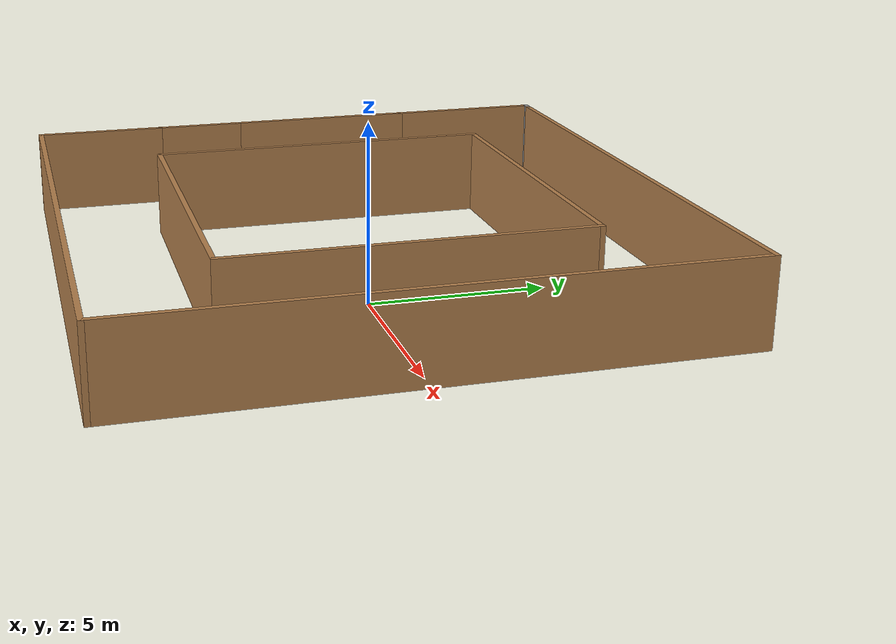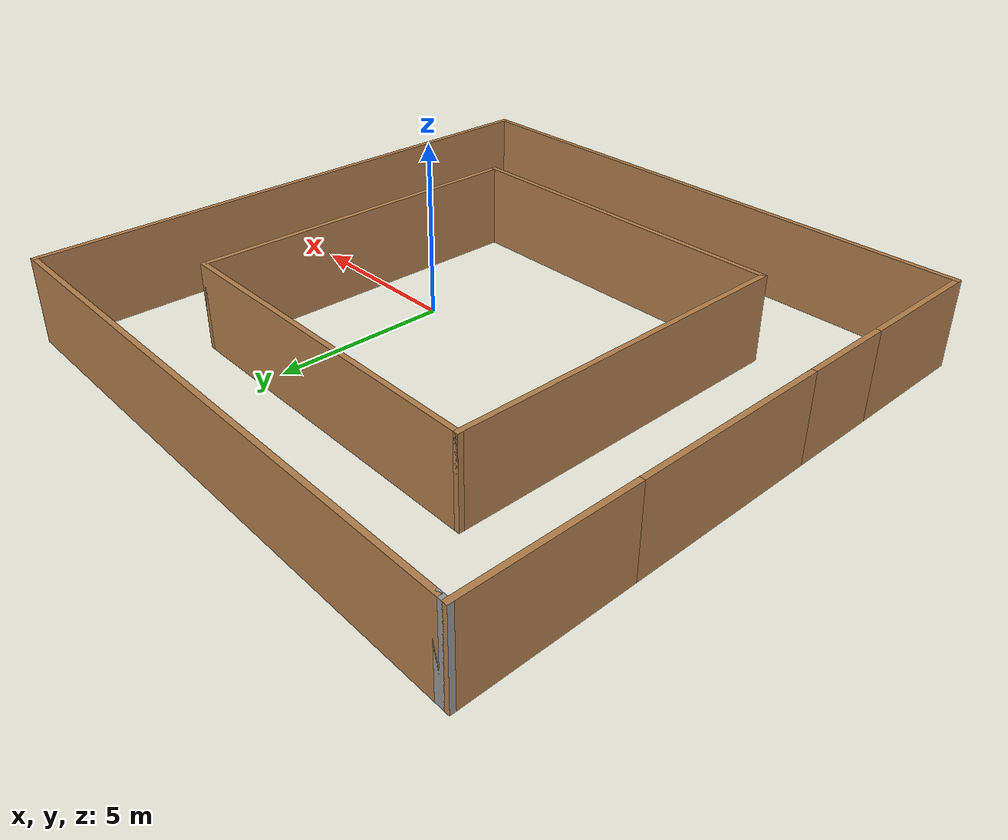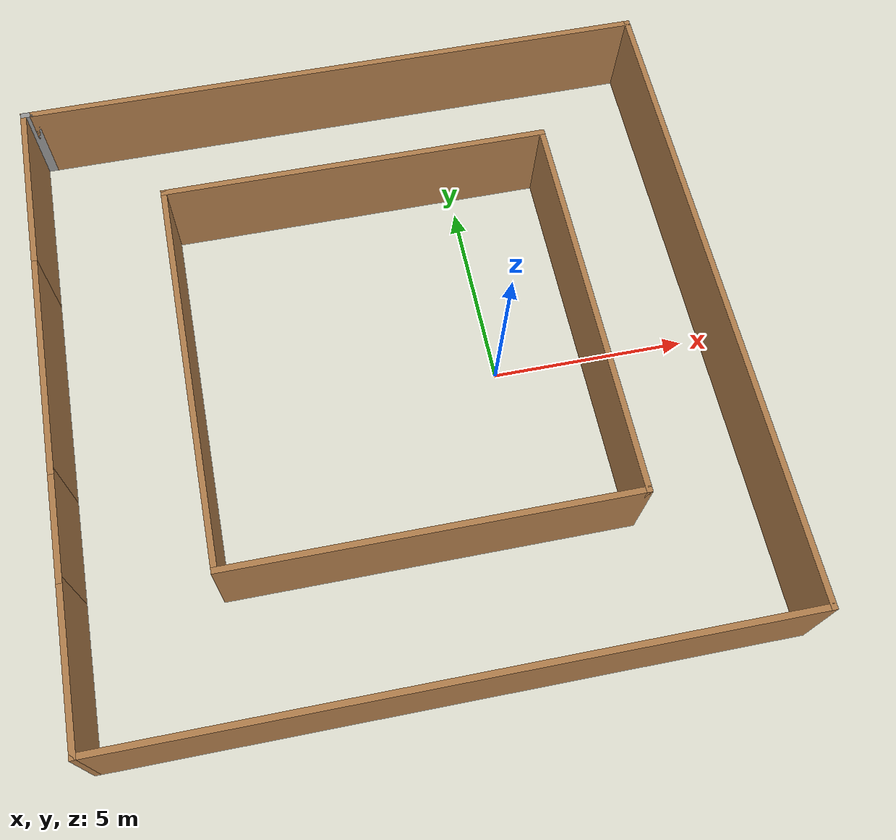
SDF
<?xml version='1.0'?>
<sdf version='1.7'>
  <model name='square_hallway_filled'>
    <pose>-2.73264 0.415239 0 0 -0 0</pose>
    <link name='Wall_102'>
      <collision name='Wall_102_Collision'>
        <geometry>
          <box>
            <size>5.75 0.15 2.5</size>
          </box>
        </geometry>
        <pose>0 0 1.25 0 -0 0</pose>
      </collision>
      <visual name='Wall_102_Visual'>
        <pose>0 0 1.25 0 -0 0</pose>
        <geometry>
          <box>
            <size>5.75 0.15 2.5</size>
          </box>
        </geometry>
        <material>
          <script>
            <uri>file://media/materials/scripts/gazebo.material</uri>
            <name>Gazebo/Wood</name>
          </script>
          <ambient>1 1 1 1</ambient>
        </material>
        <meta>
          <layer>0</layer>
        </meta>
      </visual>
      <pose>-8.3 0.9 0 0 -0 -1.5708</pose>
    </link>
    <link name='Wall_103'>
      <collision name='Wall_103_Collision'>
        <geometry>
          <box>
            <size>2.75 0.15 2.5</size>
          </box>
        </geometry>
        <pose>0 0 1.25 0 -0 0</pose>
      </collision>
      <visual name='Wall_103_Visual'>
        <pose>0 0 1.25 0 -0 0</pose>
        <geometry>
          <box>
            <size>2.75 0.15 2.5</size>
          </box>
        </geometry>
        <material>
          <script>
            <uri>file://media/materials/scripts/gazebo.material</uri>
            <name>Gazebo/Wood</name>
          </script>
          <ambient>1 1 1 1</ambient>
        </material>
        <meta>
          <layer>0</layer>
        </meta>
      </visual>
      <pose>-8.3 -3.2 0 0 -0 -1.5708</pose>
    </link>
    <link name='Wall_104'>
      <collision name='Wall_104_Collision'>
        <geometry>
          <box>
            <size>3.95 0.15 2.5</size>
          </box>
        </geometry>
        <pose>0 0 1.25 0 -0 0</pose>
      </collision>
      <visual name='Wall_104_Visual'>
        <pose>0 0 1.25 0 -0 0</pose>
        <geometry>
          <box>
            <size>3.95 0.15 2.5</size>
          </box>
        </geometry>
        <material>
          <script>
            <uri>file://media/materials/scripts/gazebo.material</uri>
            <name>Gazebo/Wood</name>
          </script>
          <ambient>1 1 1 1</ambient>
        </material>
        <meta>
          <layer>0</layer>
        </meta>
      </visual>
      <pose>-8.3 -6.4 0 0 -0 -1.5708</pose>
    </link>
    <link name='Wall_106'>
      <collision name='Wall_106_Collision'>
        <geometry>
          <box>
            <size>10.1499 0.15 2.5</size>
          </box>
        </geometry>
        <pose>0 0 1.25 0 -0 0</pose>
      </collision>
      <visual name='Wall_106_Visual'>
        <pose>0 0 1.25 0 -0 0</pose>
        <geometry>
          <box>
            <size>10.1499 0.15 2.5</size>
          </box>
        </geometry>
        <material>
          <script>
            <uri>file://media/materials/scripts/gazebo.material</uri>
            <name>Gazebo/Wood</name>
          </script>
          <ambient>1 1 1 1</ambient>
        </material>
        <meta>
          <layer>0</layer>
        </meta>
      </visual>
      <pose>0.092725 -4.92657 0 0 -0 0</pose>
    </link>
    <link name='Wall_109'>
      <collision name='Wall_109_Collision'>
        <geometry>
          <box>
            <size>4.75 0.15 2.5</size>
          </box>
        </geometry>
        <pose>0 0 1.25 0 -0 0</pose>
      </collision>
      <visual name='Wall_109_Visual'>
        <pose>0 0 1.25 0 -0 0</pose>
        <geometry>
          <box>
            <size>4.75 0.15 2.5</size>
          </box>
        </geometry>
        <material>
          <script>
            <uri>file://media/materials/scripts/gazebo.material</uri>
            <name>Gazebo/Wood</name>
          </script>
          <ambient>1 1 1 1</ambient>
        </material>
        <meta>
          <layer>0</layer>
        </meta>
      </visual>
      <pose>-8.3 6 0 0 -0 -1.5708</pose>
    </link>
    <link name='Wall_79'>
      <collision name='Wall_79_Collision'>
        <geometry>
          <box>
            <size>10.25 0.15 2.5</size>
          </box>
        </geometry>
        <pose>0 0 1.25 0 -0 0</pose>
      </collision>
      <visual name='Wall_79_Visual'>
        <pose>0 0 1.25 0 -0 0</pose>
        <geometry>
          <box>
            <size>10.25 0.15 2.5</size>
          </box>
        </geometry>
        <material>
          <script>
            <uri>file://media/materials/scripts/gazebo.material</uri>
            <name>Gazebo/Wood</name>
          </script>
          <ambient>1 1 1 1</ambient>
        </material>
        <meta>
          <layer>0</layer>
        </meta>
      </visual>
      <pose>-4.90722 0.123431 0 0 -0 -1.5708</pose>
    </link>
    <link name='Wall_81'>
      <collision name='Wall_81_Collision'>
        <geometry>
          <box>
            <size>10.25 0.15 2.5</size>
          </box>
        </geometry>
        <pose>0 0 1.25 0 -0 0</pose>
      </collision>
      <visual name='Wall_81_Visual'>
        <pose>0 0 1.25 0 -0 0</pose>
        <geometry>
          <box>
            <size>10.25 0.15 2.5</size>
          </box>
        </geometry>
        <material>
          <script>
            <uri>file://media/materials/scripts/gazebo.material</uri>
            <name>Gazebo/Wood</name>
          </script>
          <ambient>1 1 1 1</ambient>
        </material>
        <meta>
          <layer>0</layer>
        </meta>
      </visual>
      <pose>5.09267 0.123431 0 0 -0 1.5708</pose>
    </link>
    <link name='Wall_88'>
      <collision name='Wall_88_Collision'>
        <geometry>
          <box>
            <size>16.5 0.15 2.5</size>
          </box>
        </geometry>
        <pose>0 0 1.25 0 -0 0</pose>
      </collision>
      <visual name='Wall_88_Visual'>
        <pose>0 0 1.25 0 -0 0</pose>
        <geometry>
          <box>
            <size>16.5 0.15 2.5</size>
          </box>
        </geometry>
        <material>
          <script>
            <uri>file://media/materials/scripts/gazebo.material</uri>
            <name>Gazebo/Wood</name>
          </script>
          <ambient>1 1 1 1</ambient>
        </material>
        <meta>
          <layer>0</layer>
        </meta>
      </visual>
      <pose>0.125 8.3 0 0 -0 0</pose>
    </link>
    <link name='Wall_89'>
      <collision name='Wall_89_Collision'>
        <geometry>
          <box>
            <size>16.75 0.15 2.5</size>
          </box>
        </geometry>
        <pose>0 0 1.25 0 -0 0</pose>
      </collision>
      <visual name='Wall_89_Visual'>
        <pose>0 0 1.25 0 -0 0</pose>
        <geometry>
          <box>
            <size>16.75 0.15 2.5</size>
          </box>
        </geometry>
        <material>
          <script>
            <uri>file://media/materials/scripts/gazebo.material</uri>
            <name>Gazebo/Wood</name>
          </script>
          <ambient>1 1 1 1</ambient>
        </material>
        <meta>
          <layer>0</layer>
        </meta>
      </visual>
      <pose>8.3 -0 0 0 -0 -1.5708</pose>
    </link>
    <link name='Wall_90'>
      <collision name='Wall_90_Collision'>
        <geometry>
          <box>
            <size>16.75 0.15 2.5</size>
          </box>
        </geometry>
        <pose>0 0 1.25 0 -0 0</pose>
      </collision>
      <visual name='Wall_90_Visual'>
        <pose>0 0 1.25 0 -0 0</pose>
        <geometry>
          <box>
            <size>16.75 0.15 2.5</size>
          </box>
        </geometry>
        <material>
          <script>
            <uri>file://media/materials/scripts/gazebo.material</uri>
            <name>Gazebo/Wood</name>
          </script>
          <ambient>1 1 1 1</ambient>
        </material>
        <meta>
          <layer>0</layer>
        </meta>
      </visual>
      <pose>0 -8.3 0 0 -0 3.14159</pose>
    </link>
    <link name='Wall_97'>
      <collision name='Wall_97_Collision'>
        <geometry>
          <box>
            <size>10.1499 0.15 2.5</size>
          </box>
        </geometry>
        <pose>0 0 1.25 0 -0 0</pose>
      </collision>
      <visual name='Wall_97_Visual'>
        <pose>0 0 1.25 0 -0 0</pose>
        <geometry>
          <box>
            <size>10.1499 0.15 2.5</size>
          </box>
        </geometry>
        <material>
          <script>
            <uri>file://media/materials/scripts/gazebo.material</uri>
            <name>Gazebo/Wood</name>
          </script>
          <ambient>1 1 1 1</ambient>
        </material>
        <meta>
          <layer>0</layer>
        </meta>
      </visual>
      <pose>0.092725 5.17343 0 0 -0 0</pose>
    </link>
    <link name='Wall_99'>
      <collision name='Wall_99_Collision'>
        <geometry>
          <box>
            <size>0.4 0.15 2.5</size>
          </box>
        </geometry>
        <pose>0 0 1.25 0 -0 0</pose>
      </collision>
      <visual name='Wall_99_Visual'>
        <pose>0 0 1.25 0 -0 0</pose>
        <geometry>
          <box>
            <size>0.4 0.15 2.5</size>
          </box>
        </geometry>
        <material>
          <script>
            <uri>file://media/materials/scripts/gazebo.material</uri>
            <name>Gazebo/Grey</name>
          </script>
          <ambient>1 1 1 1</ambient>
        </material>
        <meta>
          <layer>0</layer>
        </meta>
      </visual>
      <pose>-8.175 8.3 0 0 -0 -3.14159</pose>
    </link>
    <static>1</static>
  </model>
</sdf>
